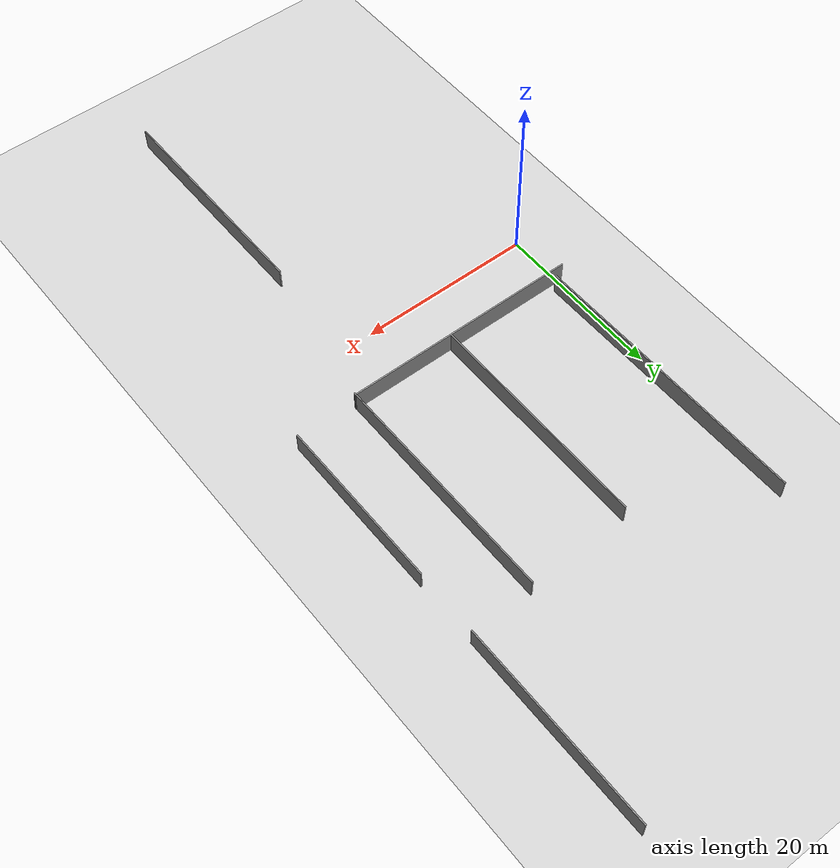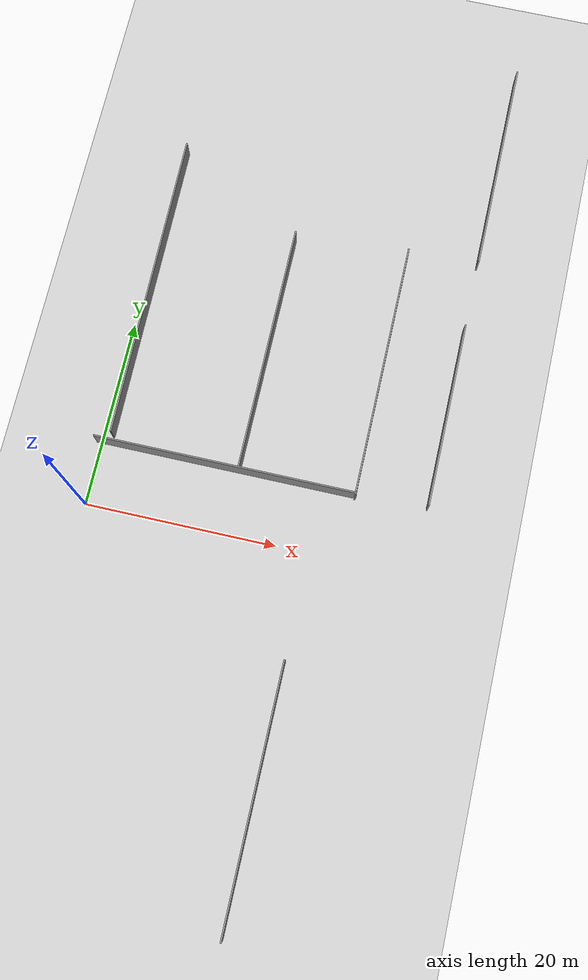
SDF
<sdf version="1.6">
 <world name="default">
  <model name="ground_plane">
   <static>1</static>
   <link name="link">
    <collision name="collision">
     <geometry><plane><normal>0 0 1</normal><size>100 100</size></plane></geometry>
     <surface>
      <contact><collide_bitmask>65535</collide_bitmask></contact>
      <friction><ode><mu>100</mu><mu2>50</mu2></ode></friction>
     </surface>
    </collision>
    <visual name="visual">
     <cast_shadows>0</cast_shadows>
     <geometry><plane><normal>0 0 1</normal><size>100 100</size></plane></geometry>
     <material>
      <script><uri>file://media/materials/scripts/gazebo.material</uri><name>Gazebo/Grey</name></script>
     </material>
    </visual>
   </link>
  </model>
  <model name="en_uzun_duvar2_clone_1_clone_clone_clone_10_clone_2">
   <link name="Wall_2">
    <pose>10.2656 7.53235 0 0 -0 0</pose>
    <inertial>
     <inertia><ixx>0</ixx><ixy>0</ixy><ixz>0</ixz><iyy>0</iyy><iyz>0</iyz><izz>0</izz></inertia>
     <mass>0</mass>
    </inertial>
    <visual name="Wall_2_Visual">
     <pose>0 0 1.25 0 -0 0</pose>
     <geometry><box><size>23.1013 0.15 2.5</size></box></geometry>
     <material>
      <script><uri>file://media/materials/scripts/gazebo.material</uri><name>Gazebo/Grey</name></script>
      <ambient>1 1 1 1</ambient>
     </material>
     <meta><layer>0</layer></meta>
    </visual>
    <collision name="Wall_2_Collision">
     <pose>0 0 1.25 0 -0 0</pose>
     <geometry><box><size>23.1013 0.15 2.5</size></box></geometry>
     <surface>
      <friction>
       <ode><mu>1</mu><mu2>1</mu2><fdir1>0 0 0</fdir1><slip1>0</slip1><slip2>0</slip2></ode>
       <torsional>
        <coefficient>1</coefficient>
        <patch_radius>0</patch_radius>
        <surface_radius>0</surface_radius>
        <use_patch_radius>1</use_patch_radius>
        <ode><slip>0</slip></ode>
       </torsional>
      </friction>
      <bounce><restitution_coefficient>0</restitution_coefficient><threshold>1e+06</threshold></bounce>
      <contact>
       <collide_without_contact>0</collide_without_contact>
       <collide_without_contact_bitmask>1</collide_without_contact_bitmask>
       <collide_bitmask>1</collide_bitmask>
       <ode>
        <soft_cfm>0</soft_cfm>
        <soft_erp>0.2</soft_erp>
        <kp>1e+13</kp>
        <kd>1</kd>
        <max_vel>0.01</max_vel>
        <min_depth>0</min_depth>
       </ode>
       <bullet>
        <split_impulse>1</split_impulse>
        <split_impulse_penetration_threshold>-0.01</split_impulse_penetration_threshold>
        <soft_cfm>0</soft_cfm>
        <soft_erp>0.2</soft_erp>
        <kp>1e+13</kp>
        <kd>1</kd>
       </bullet>
      </contact>
     </surface>
    </collision>
   </link>
   <static>1</static>
   <pose>41.7465 35.4057 0 0 -0 1.57059</pose>
  </model>
  <model name="en_uzun_duvar2_clone_1_clone_clone_clone_6_clone">
   <link name="Wall_2">
    <pose>10.2656 7.53235 0 0 -0 0</pose>
    <inertial>
     <inertia><ixx>0</ixx><ixy>0</ixy><ixz>0</ixz><iyy>0</iyy><iyz>0</iyz><izz>0</izz></inertia>
     <mass>0</mass>
    </inertial>
    <visual name="Wall_2_Visual">
     <pose>0 0 1.25 0 -0 0</pose>
     <geometry><box><size>19.779 0.15 2.5</size></box></geometry>
     <material>
      <script><uri>file://media/materials/scripts/gazebo.material</uri><name>Gazebo/Grey</name></script>
      <ambient>1 1 1 1</ambient>
     </material>
     <meta><layer>0</layer></meta>
    </visual>
    <collision name="Wall_2_Collision">
     <pose>0 0 1.25 0 -0 0</pose>
     <geometry><box><size>19.779 0.15 2.5</size></box></geometry>
     <surface>
      <friction>
       <ode><mu>1</mu><mu2>1</mu2><fdir1>0 0 0</fdir1><slip1>0</slip1><slip2>0</slip2></ode>
       <torsional>
        <coefficient>1</coefficient>
        <patch_radius>0</patch_radius>
        <surface_radius>0</surface_radius>
        <use_patch_radius>1</use_patch_radius>
        <ode><slip>0</slip></ode>
       </torsional>
      </friction>
      <bounce><restitution_coefficient>0</restitution_coefficient><threshold>1e+06</threshold></bounce>
      <contact>
       <collide_without_contact>0</collide_without_contact>
       <collide_without_contact_bitmask>1</collide_without_contact_bitmask>
       <collide_bitmask>1</collide_bitmask>
       <ode>
        <soft_cfm>0</soft_cfm>
        <soft_erp>0.2</soft_erp>
        <kp>1e+13</kp>
        <kd>1</kd>
        <max_vel>0.01</max_vel>
        <min_depth>0</min_depth>
       </ode>
       <bullet>
        <split_impulse>1</split_impulse>
        <split_impulse_penetration_threshold>-0.01</split_impulse_penetration_threshold>
        <soft_cfm>0</soft_cfm>
        <soft_erp>0.2</soft_erp>
        <kp>1e+13</kp>
        <kd>1</kd>
       </bullet>
      </contact>
     </surface>
    </collision>
   </link>
   <static>1</static>
   <pose>41.731 6.60133 0 0 -0 1.57059</pose>
  </model>
  <model name="en_uzun_duvar2_clone_1_clone_clone_clone_4_clone_3_clone_4">
   <link name="Wall_2">
    <pose>10.2656 7.53235 0 0 -0 0</pose>
    <inertial>
     <inertia><ixx>0</ixx><ixy>0</ixy><ixz>0</ixz><iyy>0</iyy><iyz>0</iyz><izz>0</izz></inertia>
     <mass>0</mass>
    </inertial>
    <visual name="Wall_2_Visual">
     <pose>0 0 1.25 0 -0 0</pose>
     <geometry><box><size>27.457 0.15 2.5</size></box></geometry>
     <material>
      <script><uri>file://media/materials/scripts/gazebo.material</uri><name>Gazebo/Grey</name></script>
      <ambient>1 1 1 1</ambient>
     </material>
     <meta><layer>0</layer></meta>
    </visual>
    <collision name="Wall_2_Collision">
     <pose>0 0 1.25 0 -0 0</pose>
     <geometry><box><size>27.457 0.15 2.5</size></box></geometry>
     <surface>
      <friction>
       <ode><mu>1</mu><mu2>1</mu2><fdir1>0 0 0</fdir1><slip1>0</slip1><slip2>0</slip2></ode>
       <torsional>
        <coefficient>1</coefficient>
        <patch_radius>0</patch_radius>
        <surface_radius>0</surface_radius>
        <use_patch_radius>1</use_patch_radius>
        <ode><slip>0</slip></ode>
       </torsional>
      </friction>
      <bounce><restitution_coefficient>0</restitution_coefficient><threshold>1e+06</threshold></bounce>
      <contact>
       <collide_without_contact>0</collide_without_contact>
       <collide_without_contact_bitmask>1</collide_without_contact_bitmask>
       <collide_bitmask>1</collide_bitmask>
       <ode>
        <soft_cfm>0</soft_cfm>
        <soft_erp>0.2</soft_erp>
        <kp>1e+13</kp>
        <kd>1</kd>
        <max_vel>0.01</max_vel>
        <min_depth>0</min_depth>
       </ode>
       <bullet>
        <split_impulse>1</split_impulse>
        <split_impulse_penetration_threshold>-0.01</split_impulse_penetration_threshold>
        <soft_cfm>0</soft_cfm>
        <soft_erp>0.2</soft_erp>
        <kp>1e+13</kp>
        <kd>1</kd>
       </bullet>
      </contact>
     </surface>
    </collision>
   </link>
   <static>1</static>
   <pose>23.4243 14.2105 0 0 -0 3.14036</pose>
  </model>
  <model name="en_uzun_duvar2_clone_1_clone_clone_clone_4_clone_3_clone_5">
   <link name="Wall_2">
    <pose>10.2656 7.53235 0 0 -0 0</pose>
    <inertial>
     <inertia><ixx>0</ixx><ixy>0</ixy><ixz>0</ixz><iyy>0</iyy><iyz>0</iyz><izz>0</izz></inertia>
     <mass>0</mass>
    </inertial>
    <visual name="Wall_2_Visual">
     <pose>0 0 1.25 0 -0 0</pose>
     <geometry><box><size>33.2978 0.15 2.5</size></box></geometry>
     <material>
      <script><uri>file://media/materials/scripts/gazebo.material</uri><name>Gazebo/Grey</name></script>
      <ambient>1 1 1 1</ambient>
     </material>
     <meta><layer>0</layer></meta>
    </visual>
    <collision name="Wall_2_Collision">
     <pose>0 0 1.25 0 -0 0</pose>
     <geometry><box><size>33.2978 0.15 2.5</size></box></geometry>
     <surface>
      <friction>
       <ode><mu>1</mu><mu2>1</mu2><fdir1>0 0 0</fdir1><slip1>0</slip1><slip2>0</slip2></ode>
       <torsional>
        <coefficient>1</coefficient>
        <patch_radius>0</patch_radius>
        <surface_radius>0</surface_radius>
        <use_patch_radius>1</use_patch_radius>
        <ode><slip>0</slip></ode>
       </torsional>
      </friction>
      <bounce><restitution_coefficient>0</restitution_coefficient><threshold>1e+06</threshold></bounce>
      <contact>
       <collide_without_contact>0</collide_without_contact>
       <collide_without_contact_bitmask>1</collide_without_contact_bitmask>
       <collide_bitmask>1</collide_bitmask>
       <ode>
        <soft_cfm>0</soft_cfm>
        <soft_erp>0.2</soft_erp>
        <kp>1e+13</kp>
        <kd>1</kd>
        <max_vel>0.01</max_vel>
        <min_depth>0</min_depth>
       </ode>
       <bullet>
        <split_impulse>1</split_impulse>
        <split_impulse_penetration_threshold>-0.01</split_impulse_penetration_threshold>
        <soft_cfm>0</soft_cfm>
        <soft_erp>0.2</soft_erp>
        <kp>1e+13</kp>
        <kd>1</kd>
       </bullet>
      </contact>
     </surface>
    </collision>
   </link>
   <static>1</static>
   <pose>8.47961 13.9095 0 0 -0 1.57982</pose>
  </model>
  <model name="en_uzun_duvar2_clone_1_clone_clone_clone_4_clone_0_clone_clone">
   <link name="Wall_2">
    <pose>10.2656 7.53235 0 0 -0 0</pose>
    <inertial>
     <inertia><ixx>0</ixx><ixy>0</ixy><ixz>0</ixz><iyy>0</iyy><iyz>0</iyz><izz>0</izz></inertia>
     <mass>0</mass>
    </inertial>
    <visual name="Wall_2_Visual">
     <pose>0 0 1.25 0 -0 0</pose>
     <geometry><box><size>27.4099 0.15 2.5</size></box></geometry>
     <material>
      <script><uri>file://media/materials/scripts/gazebo.material</uri><name>Gazebo/Grey</name></script>
      <ambient>1 1 1 1</ambient>
     </material>
     <meta><layer>0</layer></meta>
    </visual>
    <collision name="Wall_2_Collision">
     <pose>0 0 1.25 0 -0 0</pose>
     <geometry><box><size>27.4099 0.15 2.5</size></box></geometry>
     <surface>
      <friction>
       <ode><mu>1</mu><mu2>1</mu2><fdir1>0 0 0</fdir1><slip1>0</slip1><slip2>0</slip2></ode>
       <torsional>
        <coefficient>1</coefficient>
        <patch_radius>0</patch_radius>
        <surface_radius>0</surface_radius>
        <use_patch_radius>1</use_patch_radius>
        <ode><slip>0</slip></ode>
       </torsional>
      </friction>
      <bounce><restitution_coefficient>0</restitution_coefficient><threshold>1e+06</threshold></bounce>
      <contact>
       <collide_without_contact>0</collide_without_contact>
       <collide_without_contact_bitmask>1</collide_without_contact_bitmask>
       <collide_bitmask>1</collide_bitmask>
       <ode>
        <soft_cfm>0</soft_cfm>
        <soft_erp>0.2</soft_erp>
        <kp>1e+13</kp>
        <kd>1</kd>
        <max_vel>0.01</max_vel>
        <min_depth>0</min_depth>
       </ode>
       <bullet>
        <split_impulse>1</split_impulse>
        <split_impulse_penetration_threshold>-0.01</split_impulse_penetration_threshold>
        <soft_cfm>0</soft_cfm>
        <soft_erp>0.2</soft_erp>
        <kp>1e+13</kp>
        <kd>1</kd>
       </bullet>
      </contact>
     </surface>
    </collision>
   </link>
   <static>1</static>
   <pose>19.1819 30.3945 0 0 0 -1.56922</pose>
  </model>
  <model name="en_uzun_duvar2_clone_1_clone_clone_clone_4_clone_0_clone_clone_clone">
   <link name="Wall_2">
    <pose>10.2656 7.53235 0 0 -0 0</pose>
    <inertial>
     <inertia><ixx>0</ixx><ixy>0</ixy><ixz>0</ixz><iyy>0</iyy><iyz>0</iyz><izz>0</izz></inertia>
     <mass>0</mass>
    </inertial>
    <visual name="Wall_2_Visual">
     <pose>0 0 1.25 0 -0 0</pose>
     <geometry><box><size>26.4558 0.15 2.5</size></box></geometry>
     <material>
      <script><uri>file://media/materials/scripts/gazebo.material</uri><name>Gazebo/Grey</name></script>
      <ambient>1 1 1 1</ambient>
     </material>
     <meta><layer>0</layer></meta>
    </visual>
    <collision name="Wall_2_Collision">
     <pose>0 0 1.25 0 -0 0</pose>
     <geometry><box><size>26.4558 0.15 2.5</size></box></geometry>
     <surface>
      <friction>
       <ode><mu>1</mu><mu2>1</mu2><fdir1>0 0 0</fdir1><slip1>0</slip1><slip2>0</slip2></ode>
       <torsional>
        <coefficient>1</coefficient>
        <patch_radius>0</patch_radius>
        <surface_radius>0</surface_radius>
        <use_patch_radius>1</use_patch_radius>
        <ode><slip>0</slip></ode>
       </torsional>
      </friction>
      <bounce><restitution_coefficient>0</restitution_coefficient><threshold>1e+06</threshold></bounce>
      <contact>
       <collide_without_contact>0</collide_without_contact>
       <collide_without_contact_bitmask>1</collide_without_contact_bitmask>
       <collide_bitmask>1</collide_bitmask>
       <ode>
        <soft_cfm>0</soft_cfm>
        <soft_erp>0.2</soft_erp>
        <kp>1e+13</kp>
        <kd>1</kd>
        <max_vel>0.01</max_vel>
        <min_depth>0</min_depth>
       </ode>
       <bullet>
        <split_impulse>1</split_impulse>
        <split_impulse_penetration_threshold>-0.01</split_impulse_penetration_threshold>
        <soft_cfm>0</soft_cfm>
        <soft_erp>0.2</soft_erp>
        <kp>1e+13</kp>
        <kd>1</kd>
       </bullet>
      </contact>
     </surface>
    </collision>
   </link>
   <static>1</static>
   <pose>15.9561 -14.1121 0 0 0 -1.56922</pose>
  </model>
  <model name="en_uzun_duvar2_clone_1_clone_clone_clone_4_clone_0_clone_clone_clone_clone">
   <link name="Wall_2">
    <pose>10.2656 7.53235 0 0 -0 0</pose>
    <inertial>
     <inertia><ixx>0</ixx><ixy>0</ixy><ixz>0</ixz><iyy>0</iyy><iyz>0</iyz><izz>0</izz></inertia>
     <mass>0</mass>
    </inertial>
    <visual name="Wall_2_Visual">
     <pose>0 0 1.25 0 -0 0</pose>
     <geometry><box><size>26.4558 0.15 2.5</size></box></geometry>
     <material>
      <script><uri>file://media/materials/scripts/gazebo.material</uri><name>Gazebo/Grey</name></script>
      <ambient>1 1 1 1</ambient>
     </material>
     <meta><layer>0</layer></meta>
    </visual>
    <collision name="Wall_2_Collision">
     <pose>0 0 1.25 0 -0 0</pose>
     <geometry><box><size>26.4558 0.15 2.5</size></box></geometry>
     <surface>
      <friction>
       <ode><mu>1</mu><mu2>1</mu2><fdir1>0 0 0</fdir1><slip1>0</slip1><slip2>0</slip2></ode>
       <torsional>
        <coefficient>1</coefficient>
        <patch_radius>0</patch_radius>
        <surface_radius>0</surface_radius>
        <use_patch_radius>1</use_patch_radius>
        <ode><slip>0</slip></ode>
       </torsional>
      </friction>
      <bounce><restitution_coefficient>0</restitution_coefficient><threshold>1e+06</threshold></bounce>
      <contact>
       <collide_without_contact>0</collide_without_contact>
       <collide_without_contact_bitmask>1</collide_without_contact_bitmask>
       <collide_bitmask>1</collide_bitmask>
       <ode>
        <soft_cfm>0</soft_cfm>
        <soft_erp>0.2</soft_erp>
        <kp>1e+13</kp>
        <kd>1</kd>
        <max_vel>0.01</max_vel>
        <min_depth>0</min_depth>
       </ode>
       <bullet>
        <split_impulse>1</split_impulse>
        <split_impulse_penetration_threshold>-0.01</split_impulse_penetration_threshold>
        <soft_cfm>0</soft_cfm>
        <soft_erp>0.2</soft_erp>
        <kp>1e+13</kp>
        <kd>1</kd>
       </bullet>
      </contact>
     </surface>
    </collision>
   </link>
   <static>1</static>
   <pose>7.01717 30.2374 0 0 0 -1.56922</pose>
  </model>
 </world>
</sdf>
